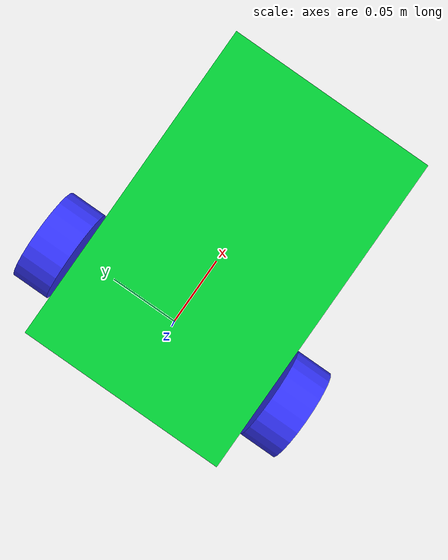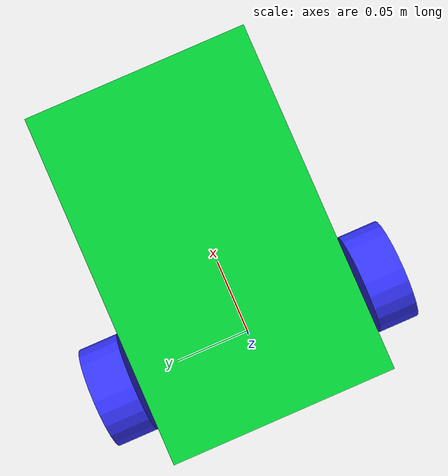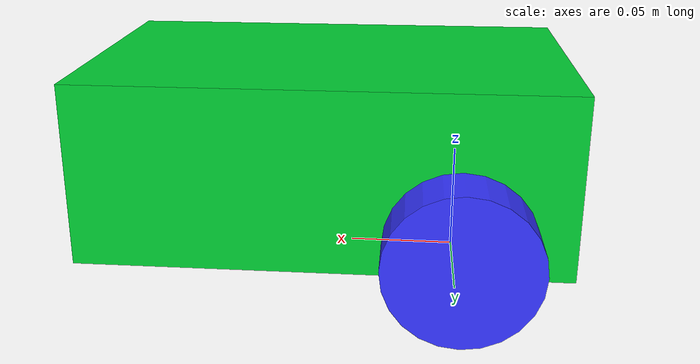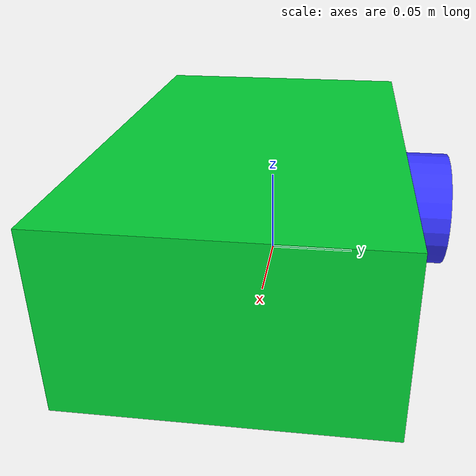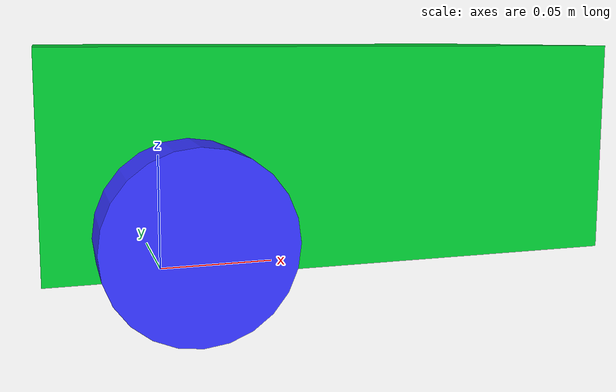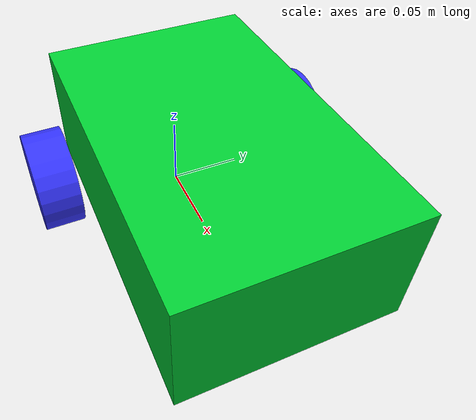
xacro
<?xml version="1.0"?>
<robot xmlns:xacro="http://www.ros.org/wiki/xacro">

    <xacro:include filename="inertial_macros.xacro"/>

    <xacro:property name="chassis_length" value="0.22"/>
    <xacro:property name="chassis_width" value="0.14"/>
    <xacro:property name="chassis_height" value="0.082"/>
    <xacro:property name="chassis_mass" value="1.0"/>
    <xacro:property name="chassis_offset_z" value="0.015"/>
    <xacro:property name="wheel_radius" value="0.033"/>
    <xacro:property name="wheel_thickness" value="0.026"/>
    <xacro:property name="wheel_mass" value="0.0385"/>
    <xacro:property name="wheel_offset_x" value="0.05"/>
    <xacro:property name="wheel_offset_y" value="0.09"/>
    <xacro:property name="wheel_offset_z" value="0.033"/>
    <xacro:property name="caster_wheel_radius" value="0.015"/>
    <xacro:property name="caster_wheel_mass" value="0.02"/>
    <xacro:property name="caster_wheel_offset_x" value="0.06"/>
    <xacro:property name="caster_wheel_offset_z" value="0.015"/>

    <xacro:property name="wheel_effort" value="2000"/>
    <xacro:property name="wheel_velocity" value="30"/>

    <material name="white">
        <color rgba="1 1 1 1"/>
    </material>

    <material name="orange">
        <color rgba="1 0.3 0.1 1"/>
    </material>

    <material name="blue">
        <color rgba="0.2 0.2 1 1"/>
    </material>

    <material name="black">
        <color rgba="0 0 0 1"/>
    </material>

    <material name="red">
        <color rgba="1 0 0 1"/>
    </material>

    <material name="green">
        <color rgba="0 0.8 0.2 1"/>
    </material>

    <!-- BASE FOOTPRINT -->
    <link name="base_footprint"></link>

    <!-- BASE LINK -->
    <joint name="base_joint" type="fixed">
        <parent link="base_footprint"/>
        <child link="base_link"/>
        <origin xyz="0 0 ${chassis_offset_z}" rpy="0 0 0"/>
    </joint>

    <link name="base_link"></link>

    <!-- CHASSIS LINK -->
    <joint name="chassis_joint" type="fixed">
        <parent link="base_link"/>
        <child link="chassis"/>
        <origin xyz="${-wheel_offset_x} 0 0"/>
    </joint>

    <link name="chassis">
        <visual>
            <origin xyz="${chassis_length/2} 0 ${chassis_height/2}"/>
            <geometry>
                <box size="${chassis_length} ${chassis_width} ${chassis_height}"/>
            </geometry>
            <material name="green"/>
        </visual>
        <collision>
            <origin xyz="${chassis_length/2} 0 ${chassis_height/2}"/>
            <geometry>
                <box size="${chassis_length} ${chassis_width} ${chassis_height}"/>
            </geometry>
        </collision>
        <xacro:inertial_box mass="${chassis_mass}" x="${chassis_length}" y="${chassis_width}" z="${chassis_height}">
            <origin xyz="${chassis_length/2} 0 ${chassis_height/2}" rpy="0 0 0"/>
        </xacro:inertial_box>
    </link>

    <gazebo reference="chassis">
        <material>Gazebo/Green</material>
    </gazebo>

    <!-- LEFT WHEEL LINK -->
    <joint name="left_wheel_joint" type="continuous">
        <parent link="base_link"/>
        <child link="left_wheel"/>
        <origin xyz="0 ${wheel_offset_y} ${wheel_offset_z - chassis_offset_z}" rpy="-${pi/2} 0 0"/>
        <axis xyz="0 0 1"/>
        <limit effort="${wheel_effort}" velocity="${wheel_velocity}"/>
        <dynamics damping="1.0" friction="1.0"/>
    </joint>

    <link name="left_wheel">
        <visual>
            <geometry>
                <cylinder radius="${wheel_radius}" length="${wheel_thickness}"/>
            </geometry>
            <material name="blue"/>
        </visual>
        <collision>
            <geometry>
                <cylinder radius="${wheel_radius}" length="${wheel_thickness}"/>
            </geometry>
        </collision>
        <xacro:inertial_cylinder mass="${wheel_mass}" length="${wheel_thickness}" radius="${wheel_radius}">
            <origin xyz="0 0 0" rpy="0 0 0"/>
        </xacro:inertial_cylinder>
    </link>

    <gazebo reference="left_wheel">
        <material>Gazebo/Blue</material>
        <mu1>0.2</mu1>
        <mu2>0.2</mu2>
    </gazebo>

    <!-- RIGHT WHEEL LINK -->
    <joint name="right_wheel_joint" type="continuous">
        <parent link="base_link"/>
        <child link="right_wheel"/>
        <origin xyz="0 ${-wheel_offset_y} ${wheel_offset_z - chassis_offset_z}" rpy="${pi/2} 0 0"/>
        <axis xyz="0 0 -1"/>
        <limit effort="${wheel_effort}" velocity="${wheel_velocity}"/>
        <dynamics damping="1.0" friction="1.0"/>
    </joint>

    <link name="right_wheel">
        <visual>
            <geometry>
                <cylinder radius="${wheel_radius}" length="${wheel_thickness}"/>
            </geometry>
            <material name="blue"/>
        </visual>
        <collision>
            <geometry>
                <cylinder radius="${wheel_radius}" length="${wheel_thickness}"/>
            </geometry>
        </collision>
        <xacro:inertial_cylinder mass="${wheel_mass}" length="${wheel_thickness}" radius="${wheel_radius}">
            <origin xyz="0 0 0" rpy="0 0 0"/>
        </xacro:inertial_cylinder>
    </link>

    <gazebo reference="right_wheel">
        <material>Gazebo/Blue</material>
        <mu1>0.2</mu1>
        <mu2>0.2</mu2>
    </gazebo>

    <!-- CASTER WHEEL LINK -->
    <joint name="caster_wheel_joint" type="fixed">
        <parent link="chassis"/>
        <child link="caster_wheel"/>
        <origin xyz="${chassis_length/2 + caster_wheel_offset_x} 0 0"/>
    </joint>

    <link name="caster_wheel">
        <visual>
            <geometry>
                <sphere radius="${caster_wheel_radius}"/>
            </geometry>
            <material name="black"/>
        </visual>
        <collision>
            <geometry>
                <sphere radius="${caster_wheel_radius}"/>
            </geometry>
        </collision>
        <xacro:inertial_sphere mass="${caster_wheel_mass}" radius="${caster_wheel_radius}">
            <origin xyz="0 0 0" rpy="0 0 0"/>
        </xacro:inertial_sphere>
    </link>

    <gazebo reference="caster_wheel">
        <material>Gazebo/Black</material>
        <mu1 value="0.001"/>
        <mu2 value="0.001"/>
    </gazebo>

</robot>
